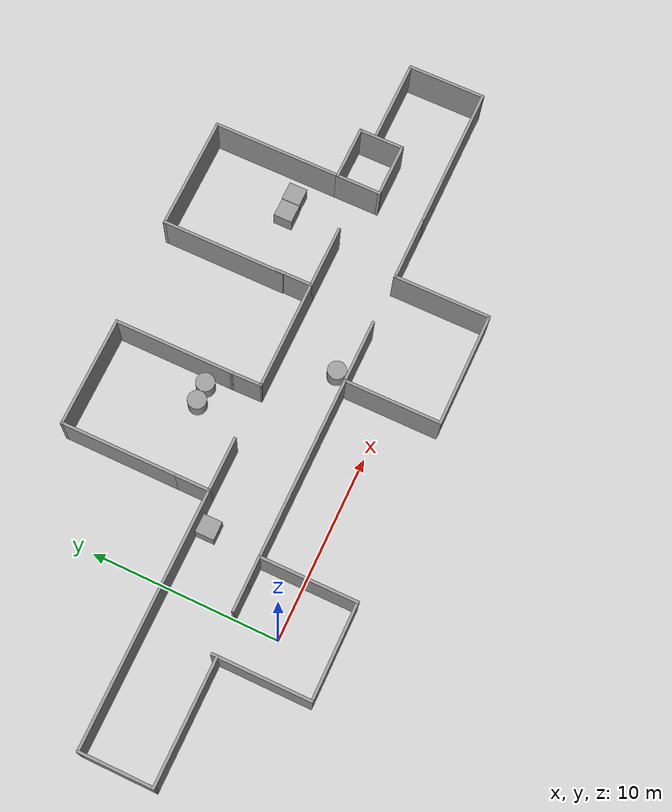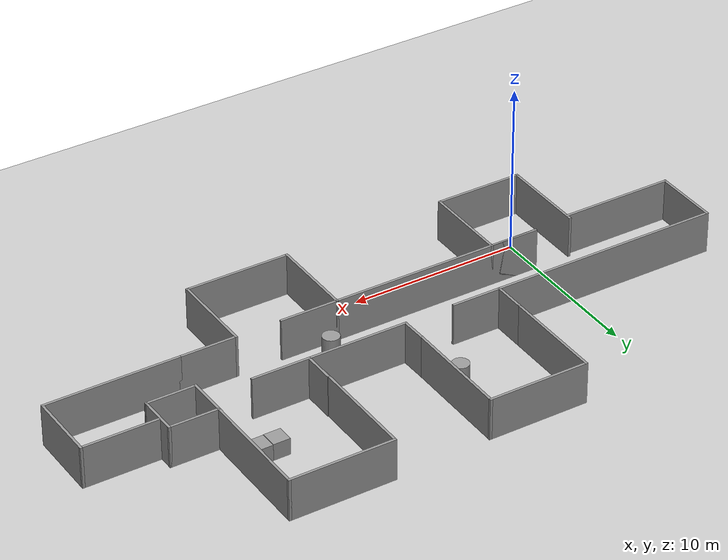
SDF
<sdf version="1.7">
 <world name="default">
  <light name="sun" type="directional">
   <pose>0 0 10 0 -0 0</pose>
   <diffuse>0.8 0.8 0.8 1</diffuse>
   <specular>0.2 0.2 0.2 1</specular>
   <attenuation>
    <range>1000</range>
    <constant>0.9</constant>
    <linear>0.01</linear>
    <quadratic>0.001</quadratic>
   </attenuation>
   <direction>-0.5 0.1 -0.9</direction>
   <spot><inner_angle>0</inner_angle><outer_angle>0</outer_angle><falloff>0</falloff></spot>
  </light>
  <model name="ground_plane">
   <static>1</static>
   <link name="link">
    <collision name="collision">
     <geometry><plane><normal>0 0 1</normal><size>100 100</size></plane></geometry>
     <surface><friction><ode><mu>100</mu><mu2>50</mu2></ode></friction></surface>
    </collision>
    <visual name="visual">
     <cast_shadows>0</cast_shadows>
     <geometry><plane><normal>0 0 1</normal><size>100 100</size></plane></geometry>
     <material>
      <script><uri>file://media/materials/scripts/gazebo.material</uri><name>Gazebo/Grey</name></script>
     </material>
    </visual>
   </link>
  </model>
  <gravity>0 0 -9.8</gravity>
  <magnetic_field>6e-06 2.3e-05 -4.2e-05</magnetic_field>
  <atmosphere type="adiabatic"/>
  <physics type="ode">
   <max_step_size>0.001</max_step_size>
   <real_time_factor>1</real_time_factor>
   <real_time_update_rate>1000</real_time_update_rate>
  </physics>
  <scene><ambient>0.4 0.4 0.4 1</ambient><background>0.7 0.7 0.7 1</background><shadows>1</shadows></scene>
  <spherical_coordinates>
   <surface_model>EARTH_WGS84</surface_model>
   <latitude_deg>0</latitude_deg>
   <longitude_deg>0</longitude_deg>
   <elevation>0</elevation>
   <heading_deg>0</heading_deg>
  </spherical_coordinates>
  <model name="clutter_env02">
   <pose>10.5567 5.6954 0 0 -0 0</pose>
   <link name="Wall_0">
    <collision name="Wall_0_Collision">
     <geometry><box><size>5.25 0.15 2.5</size></box></geometry>
     <pose>0 0 1.25 0 -0 0</pose>
    </collision>
    <visual name="Wall_0_Visual">
     <pose>0 0 1.25 0 -0 0</pose>
     <geometry><box><size>5.25 0.15 2.5</size></box></geometry>
     <material>
      <script><uri>file://media/materials/scripts/gazebo.material</uri><name>Gazebo/Grey</name></script>
      <ambient>1 1 1 1</ambient>
     </material>
     <meta><layer>0</layer></meta>
    </visual>
    <pose>-12.775 -5.9 0 0 -0 -1.5708</pose>
   </link>
   <link name="Wall_1">
    <collision name="Wall_1_Collision">
     <geometry><box><size>5.25 0.15 2.5</size></box></geometry>
     <pose>0 0 1.25 0 -0 0</pose>
    </collision>
    <visual name="Wall_1_Visual">
     <pose>0 0 1.25 0 -0 0</pose>
     <geometry><box><size>5.25 0.15 2.5</size></box></geometry>
     <material>
      <script><uri>file://media/materials/scripts/gazebo.material</uri><name>Gazebo/Grey</name></script>
      <ambient>1 1 1 1</ambient>
     </material>
     <meta><layer>0</layer></meta>
    </visual>
    <pose>-10.225 -8.45 0 0 -0 0</pose>
   </link>
   <link name="Wall_11">
    <collision name="Wall_11_Collision">
     <geometry><box><size>2.5 0.15 2.5</size></box></geometry>
     <pose>0 0 1.25 0 -0 0</pose>
    </collision>
    <visual name="Wall_11_Visual">
     <pose>0 0 1.25 0 -0 0</pose>
     <geometry><box><size>2.5 0.15 2.5</size></box></geometry>
     <material>
      <script><uri>file://media/materials/scripts/gazebo.material</uri><name>Gazebo/Grey</name></script>
      <ambient>1 1 1 1</ambient>
     </material>
     <meta><layer>0</layer></meta>
    </visual>
    <pose>14.875 0.425 0 0 -0 1.5708</pose>
   </link>
   <link name="Wall_12">
    <collision name="Wall_12_Collision">
     <geometry><box><size>3 0.15 2.5</size></box></geometry>
     <pose>0 0 1.25 0 -0 0</pose>
    </collision>
    <visual name="Wall_12_Visual">
     <pose>0 0 1.25 0 -0 0</pose>
     <geometry><box><size>3 0.15 2.5</size></box></geometry>
     <material>
      <script><uri>file://media/materials/scripts/gazebo.material</uri><name>Gazebo/Grey</name></script>
      <ambient>1 1 1 1</ambient>
     </material>
     <meta><layer>0</layer></meta>
    </visual>
    <pose>13.45 1.6 0 0 -0 3.14159</pose>
   </link>
   <link name="Wall_13">
    <collision name="Wall_13_Collision">
     <geometry><box><size>7 0.15 2.5</size></box></geometry>
     <pose>0 0 1.25 0 -0 0</pose>
    </collision>
    <visual name="Wall_13_Visual">
     <pose>0 0 1.25 0 -0 0</pose>
     <geometry><box><size>7 0.15 2.5</size></box></geometry>
     <material>
      <script><uri>file://media/materials/scripts/gazebo.material</uri><name>Gazebo/Grey</name></script>
      <ambient>1 1 1 1</ambient>
     </material>
     <meta><layer>0</layer></meta>
    </visual>
    <pose>12.025 5.025 0 0 -0 1.5708</pose>
   </link>
   <link name="Wall_14">
    <collision name="Wall_14_Collision">
     <geometry><box><size>6.25 0.15 2.5</size></box></geometry>
     <pose>0 0 1.25 0 -0 0</pose>
    </collision>
    <visual name="Wall_14_Visual">
     <pose>0 0 1.25 0 -0 0</pose>
     <geometry><box><size>6.25 0.15 2.5</size></box></geometry>
     <material>
      <script><uri>file://media/materials/scripts/gazebo.material</uri><name>Gazebo/Grey</name></script>
      <ambient>1 1 1 1</ambient>
     </material>
     <meta><layer>0</layer></meta>
    </visual>
    <pose>8.975 8.45 0 0 -0 3.14159</pose>
   </link>
   <link name="Wall_15">
    <collision name="Wall_15_Collision">
     <geometry><box><size>6.75 0.15 2.5</size></box></geometry>
     <pose>0 0 1.25 0 -0 0</pose>
    </collision>
    <visual name="Wall_15_Visual">
     <pose>0 0 1.25 0 -0 0</pose>
     <geometry><box><size>6.75 0.15 2.5</size></box></geometry>
     <material>
      <script><uri>file://media/materials/scripts/gazebo.material</uri><name>Gazebo/Grey</name></script>
      <ambient>1 1 1 1</ambient>
     </material>
     <meta><layer>0</layer></meta>
    </visual>
    <pose>5.925 5.15 0 0 -0 -1.5708</pose>
   </link>
   <link name="Wall_17">
    <collision name="Wall_17_Collision">
     <geometry><box><size>6.5 0.15 2.5</size></box></geometry>
     <pose>0 0 1.25 0 -0 0</pose>
    </collision>
    <visual name="Wall_17_Visual">
     <pose>0 0 1.25 0 -0 0</pose>
     <geometry><box><size>6.5 0.15 2.5</size></box></geometry>
     <material>
      <script><uri>file://media/materials/scripts/gazebo.material</uri><name>Gazebo/Grey</name></script>
      <ambient>1 1 1 1</ambient>
     </material>
     <meta><layer>0</layer></meta>
    </visual>
    <pose>0.074999 5.025 0 0 -0 1.5708</pose>
   </link>
   <link name="Wall_18">
    <collision name="Wall_18_Collision">
     <geometry><box><size>6 0.15 2.5</size></box></geometry>
     <pose>0 0 1.25 0 -0 0</pose>
    </collision>
    <visual name="Wall_18_Visual">
     <pose>0 0 1.25 0 -0 0</pose>
     <geometry><box><size>6 0.15 2.5</size></box></geometry>
     <material>
      <script><uri>file://media/materials/scripts/gazebo.material</uri><name>Gazebo/Grey</name></script>
      <ambient>1 1 1 1</ambient>
     </material>
     <meta><layer>0</layer></meta>
    </visual>
    <pose>-2.85 8.2 0 0 -0 3.14159</pose>
   </link>
   <link name="Wall_19">
    <collision name="Wall_19_Collision">
     <geometry><box><size>6.25 0.15 2.5</size></box></geometry>
     <pose>0 0 1.25 0 -0 0</pose>
    </collision>
    <visual name="Wall_19_Visual">
     <pose>0 0 1.25 0 -0 0</pose>
     <geometry><box><size>6.25 0.15 2.5</size></box></geometry>
     <material>
      <script><uri>file://media/materials/scripts/gazebo.material</uri><name>Gazebo/Grey</name></script>
      <ambient>1 1 1 1</ambient>
     </material>
     <meta><layer>0</layer></meta>
    </visual>
    <pose>-5.775 5.15 0 0 -0 -1.5708</pose>
   </link>
   <link name="Wall_2">
    <collision name="Wall_2_Collision">
     <geometry><box><size>5.25 0.15 2.5</size></box></geometry>
     <pose>0 0 1.25 0 -0 0</pose>
    </collision>
    <visual name="Wall_2_Visual">
     <pose>0 0 1.25 0 -0 0</pose>
     <geometry><box><size>5.25 0.15 2.5</size></box></geometry>
     <material>
      <script><uri>file://media/materials/scripts/gazebo.material</uri><name>Gazebo/Grey</name></script>
      <ambient>1 1 1 1</ambient>
     </material>
     <meta><layer>0</layer></meta>
    </visual>
    <pose>-7.675 -5.9 0 0 -0 1.5708</pose>
   </link>
   <link name="Wall_20">
    <collision name="Wall_20_Collision">
     <geometry><box><size>2 0.15 2.5</size></box></geometry>
     <pose>0 0 1.25 0 -0 0</pose>
    </collision>
    <visual name="Wall_20_Visual">
     <pose>0 0 1.25 0 -0 0</pose>
     <geometry><box><size>2 0.15 2.5</size></box></geometry>
     <material>
      <script><uri>file://media/materials/scripts/gazebo.material</uri><name>Gazebo/Grey</name></script>
      <ambient>1 1 1 1</ambient>
     </material>
     <meta><layer>0</layer></meta>
    </visual>
    <pose>-5.775 1.175 0 0 -0 -1.5708</pose>
   </link>
   <link name="Wall_21">
    <collision name="Wall_21_Collision">
     <geometry><box><size>13.75 0.15 2.5</size></box></geometry>
     <pose>0 0 1.25 0 -0 0</pose>
    </collision>
    <visual name="Wall_21_Visual">
     <pose>0 0 1.25 0 -0 0</pose>
     <geometry><box><size>13.75 0.15 2.5</size></box></geometry>
     <material>
      <script><uri>file://media/materials/scripts/gazebo.material</uri><name>Gazebo/Grey</name></script>
      <ambient>1 1 1 1</ambient>
     </material>
     <meta><layer>0</layer></meta>
    </visual>
    <pose>-12.575 0.25 0 0 -0 3.14159</pose>
   </link>
   <link name="Wall_22">
    <collision name="Wall_22_Collision">
     <geometry><box><size>4 0.15 2.5</size></box></geometry>
     <pose>0 0 1.25 0 -0 0</pose>
    </collision>
    <visual name="Wall_22_Visual">
     <pose>0 0 1.25 0 -0 0</pose>
     <geometry><box><size>4 0.15 2.5</size></box></geometry>
     <material>
      <script><uri>file://media/materials/scripts/gazebo.material</uri><name>Gazebo/Grey</name></script>
      <ambient>1 1 1 1</ambient>
     </material>
     <meta><layer>0</layer></meta>
    </visual>
    <pose>-19.375 -1.675 0 0 -0 -1.5708</pose>
   </link>
   <link name="Wall_23">
    <collision name="Wall_23_Collision">
     <geometry><box><size>6.75 0.15 2.5</size></box></geometry>
     <pose>0 0 1.25 0 -0 0</pose>
    </collision>
    <visual name="Wall_23_Visual">
     <pose>0 0 1.25 0 -0 0</pose>
     <geometry><box><size>6.75 0.15 2.5</size></box></geometry>
     <material>
      <script><uri>file://media/materials/scripts/gazebo.material</uri><name>Gazebo/Grey</name></script>
      <ambient>1 1 1 1</ambient>
     </material>
     <meta><layer>0</layer></meta>
    </visual>
    <pose>-16.075 -3.6 0 0 -0 0</pose>
   </link>
   <link name="Wall_25">
    <collision name="Wall_25_Collision">
     <geometry><box><size>3 0.15 2.5</size></box></geometry>
     <pose>0 0 1.25 0 -0 0</pose>
    </collision>
    <visual name="Wall_25_Visual">
     <pose>0 0 1.25 0 -0 0</pose>
     <geometry><box><size>3 0.15 2.5</size></box></geometry>
     <material>
      <script><uri>file://media/materials/scripts/gazebo.material</uri><name>Gazebo/Grey</name></script>
      <ambient>1 1 1 1</ambient>
     </material>
     <meta><layer>0</layer></meta>
    </visual>
    <pose>-4.35 0.25 0 0 -0 0</pose>
   </link>
   <link name="Wall_27">
    <collision name="Wall_27_Collision">
     <geometry><box><size>6 0.15 2.5</size></box></geometry>
     <pose>0 0 1.25 0 -0 0</pose>
    </collision>
    <visual name="Wall_27_Visual">
     <pose>0 0 1.25 0 -0 0</pose>
     <geometry><box><size>6 0.15 2.5</size></box></geometry>
     <material>
      <script><uri>file://media/materials/scripts/gazebo.material</uri><name>Gazebo/Grey</name></script>
      <ambient>1 1 1 1</ambient>
     </material>
     <meta><layer>0</layer></meta>
    </visual>
    <pose>3.03081 0.283447 0 0 -0 0</pose>
   </link>
   <link name="Wall_28">
    <collision name="Wall_28_Collision">
     <geometry><box><size>2 0.15 2.5</size></box></geometry>
     <pose>0 0 1.25 0 -0 0</pose>
    </collision>
    <visual name="Wall_28_Visual">
     <pose>0 0 1.25 0 -0 0</pose>
     <geometry><box><size>2 0.15 2.5</size></box></geometry>
     <material>
      <script><uri>file://media/materials/scripts/gazebo.material</uri><name>Gazebo/Grey</name></script>
      <ambient>1 1 1 1</ambient>
     </material>
     <meta><layer>0</layer></meta>
    </visual>
    <pose>5.95581 1.20845 0 0 -0 1.5708</pose>
   </link>
   <link name="Wall_3">
    <collision name="Wall_3_Collision">
     <geometry><box><size>3 0.15 2.5</size></box></geometry>
     <pose>0 0 1.25 0 -0 0</pose>
    </collision>
    <visual name="Wall_3_Visual">
     <pose>0 0 1.25 0 -0 0</pose>
     <geometry><box><size>3 0.15 2.5</size></box></geometry>
     <material>
      <script><uri>file://media/materials/scripts/gazebo.material</uri><name>Gazebo/Grey</name></script>
      <ambient>1 1 1 1</ambient>
     </material>
     <meta><layer>0</layer></meta>
    </visual>
    <pose>-9.1 -3.35 0 0 -0 3.14159</pose>
   </link>
   <link name="Wall_30">
    <collision name="Wall_30_Collision">
     <geometry><box><size>3.5 0.15 2.5</size></box></geometry>
     <pose>0 0 1.25 0 -0 0</pose>
    </collision>
    <visual name="Wall_30_Visual">
     <pose>0 0 1.25 0 -0 0</pose>
     <geometry><box><size>3.5 0.15 2.5</size></box></geometry>
     <material>
      <script><uri>file://media/materials/scripts/gazebo.material</uri><name>Gazebo/Grey</name></script>
      <ambient>1 1 1 1</ambient>
     </material>
     <meta><layer>0</layer></meta>
    </visual>
    <pose>7.63081 0.283447 0 0 -0 0</pose>
   </link>
   <link name="Wall_32">
    <collision name="Wall_32_Collision">
     <geometry><box><size>1.71686 0.15 2.5</size></box></geometry>
     <pose>0 0 1.25 0 -0 0</pose>
    </collision>
    <visual name="Wall_32_Visual">
     <pose>0 0 1.25 0 -0 0</pose>
     <geometry><box><size>1.71686 0.15 2.5</size></box></geometry>
     <material>
      <script><uri>file://media/materials/scripts/gazebo.material</uri><name>Gazebo/Grey</name></script>
      <ambient>1 1 1 1</ambient>
     </material>
     <meta><layer>0</layer></meta>
    </visual>
    <pose>0.090406 1.06672 0 0 -0 -1.55113</pose>
   </link>
   <link name="Wall_34">
    <collision name="Wall_34_Collision">
     <geometry><box><size>3.5 0.15 2.5</size></box></geometry>
     <pose>0 0 1.25 0 -0 0</pose>
    </collision>
    <visual name="Wall_34_Visual">
     <pose>0 0 1.25 0 -0 0</pose>
     <geometry><box><size>3.5 0.15 2.5</size></box></geometry>
     <material>
      <script><uri>file://media/materials/scripts/gazebo.material</uri><name>Gazebo/Grey</name></script>
      <ambient>1 1 1 1</ambient>
     </material>
     <meta><layer>0</layer></meta>
    </visual>
    <pose>3.75 -3.35 0 0 -0 0</pose>
   </link>
   <link name="Wall_36">
    <collision name="Wall_36_Collision">
     <geometry><box><size>8 0.15 2.5</size></box></geometry>
     <pose>0 0 1.25 0 -0 0</pose>
    </collision>
    <visual name="Wall_36_Visual">
     <pose>0 0 1.25 0 -0 0</pose>
     <geometry><box><size>8 0.15 2.5</size></box></geometry>
     <material>
      <script><uri>file://media/materials/scripts/gazebo.material</uri><name>Gazebo/Grey</name></script>
      <ambient>1 1 1 1</ambient>
     </material>
     <meta><layer>0</layer></meta>
    </visual>
    <pose>15.45 -3.35 0 0 -0 0</pose>
   </link>
   <link name="Wall_37">
    <collision name="Wall_37_Collision">
     <geometry><box><size>4.25 0.15 2.5</size></box></geometry>
     <pose>0 0 1.25 0 -0 0</pose>
    </collision>
    <visual name="Wall_37_Visual">
     <pose>0 0 1.25 0 -0 0</pose>
     <geometry><box><size>4.25 0.15 2.5</size></box></geometry>
     <material>
      <script><uri>file://media/materials/scripts/gazebo.material</uri><name>Gazebo/Grey</name></script>
      <ambient>1 1 1 1</ambient>
     </material>
     <meta><layer>0</layer></meta>
    </visual>
    <pose>19.375 -1.3 0 0 -0 1.5708</pose>
   </link>
   <link name="Wall_38">
    <collision name="Wall_38_Collision">
     <geometry><box><size>4.5 0.15 2.5</size></box></geometry>
     <pose>0 0 1.25 0 -0 0</pose>
    </collision>
    <visual name="Wall_38_Visual">
     <pose>0 0 1.25 0 -0 0</pose>
     <geometry><box><size>4.5 0.15 2.5</size></box></geometry>
     <material>
      <script><uri>file://media/materials/scripts/gazebo.material</uri><name>Gazebo/Grey</name></script>
      <ambient>1 1 1 1</ambient>
     </material>
     <meta><layer>0</layer></meta>
    </visual>
    <pose>17.2 0.75 0 0 -0 3.14159</pose>
   </link>
   <link name="Wall_4">
    <collision name="Wall_4_Collision">
     <geometry><box><size>12.75 0.15 2.5</size></box></geometry>
     <pose>0 0 1.25 0 -0 0</pose>
    </collision>
    <visual name="Wall_4_Visual">
     <pose>0 0 1.25 0 -0 0</pose>
     <geometry><box><size>12.75 0.15 2.5</size></box></geometry>
     <material>
      <script><uri>file://media/materials/scripts/gazebo.material</uri><name>Gazebo/Grey</name></script>
      <ambient>1 1 1 1</ambient>
     </material>
     <meta><layer>0</layer></meta>
    </visual>
    <pose>-4.225 -3.35 0 0 -0 0</pose>
   </link>
   <link name="Wall_40">
    <collision name="Wall_40_Collision">
     <geometry><box><size>3 0.15 2.5</size></box></geometry>
     <pose>0 0 1.25 0 -0 0</pose>
    </collision>
    <visual name="Wall_40_Visual">
     <pose>0 0 1.25 0 -0 0</pose>
     <geometry><box><size>3 0.15 2.5</size></box></geometry>
     <material>
      <script><uri>file://media/materials/scripts/gazebo.material</uri><name>Gazebo/Grey</name></script>
      <ambient>1 1 1 1</ambient>
     </material>
     <meta><layer>0</layer></meta>
    </visual>
    <pose>13.45 -0.75 0 0 -0 3.14159</pose>
   </link>
   <link name="Wall_41">
    <collision name="Wall_41_Collision">
     <geometry><box><size>2.5 0.15 2.5</size></box></geometry>
     <pose>0 0 1.25 0 -0 0</pose>
    </collision>
    <visual name="Wall_41_Visual">
     <pose>0 0 1.25 0 -0 0</pose>
     <geometry><box><size>2.5 0.15 2.5</size></box></geometry>
     <material>
      <script><uri>file://media/materials/scripts/gazebo.material</uri><name>Gazebo/Grey</name></script>
      <ambient>1 1 1 1</ambient>
     </material>
     <meta><layer>0</layer></meta>
    </visual>
    <pose>12.025 0.425 0 0 -0 1.5708</pose>
   </link>
   <link name="Wall_5">
    <collision name="Wall_5_Collision">
     <geometry><box><size>5.25 0.15 2.5</size></box></geometry>
     <pose>0 0 1.25 0 -0 0</pose>
    </collision>
    <visual name="Wall_5_Visual">
     <pose>0 0 1.25 0 -0 0</pose>
     <geometry><box><size>5.25 0.15 2.5</size></box></geometry>
     <material>
      <script><uri>file://media/materials/scripts/gazebo.material</uri><name>Gazebo/Grey</name></script>
      <ambient>1 1 1 1</ambient>
     </material>
     <meta><layer>0</layer></meta>
    </visual>
    <pose>2.075 -5.9 0 0 -0 -1.5708</pose>
   </link>
   <link name="Wall_6">
    <collision name="Wall_6_Collision">
     <geometry><box><size>6.25 0.15 2.5</size></box></geometry>
     <pose>0 0 1.25 0 -0 0</pose>
    </collision>
    <visual name="Wall_6_Visual">
     <pose>0 0 1.25 0 -0 0</pose>
     <geometry><box><size>6.25 0.15 2.5</size></box></geometry>
     <material>
      <script><uri>file://media/materials/scripts/gazebo.material</uri><name>Gazebo/Grey</name></script>
      <ambient>1 1 1 1</ambient>
     </material>
     <meta><layer>0</layer></meta>
    </visual>
    <pose>5.125 -8.45 0 0 -0 0</pose>
   </link>
   <link name="Wall_7">
    <collision name="Wall_7_Collision">
     <geometry><box><size>5.25 0.15 2.5</size></box></geometry>
     <pose>0 0 1.25 0 -0 0</pose>
    </collision>
    <visual name="Wall_7_Visual">
     <pose>0 0 1.25 0 -0 0</pose>
     <geometry><box><size>5.25 0.15 2.5</size></box></geometry>
     <material>
      <script><uri>file://media/materials/scripts/gazebo.material</uri><name>Gazebo/Grey</name></script>
      <ambient>1 1 1 1</ambient>
     </material>
     <meta><layer>0</layer></meta>
    </visual>
    <pose>8.175 -5.9 0 0 -0 1.5708</pose>
   </link>
   <link name="Wall_8">
    <collision name="Wall_8_Collision">
     <geometry><box><size>3.5 0.15 2.5</size></box></geometry>
     <pose>0 0 1.25 0 -0 0</pose>
    </collision>
    <visual name="Wall_8_Visual">
     <pose>0 0 1.25 0 -0 0</pose>
     <geometry><box><size>3.5 0.15 2.5</size></box></geometry>
     <material>
      <script><uri>file://media/materials/scripts/gazebo.material</uri><name>Gazebo/Grey</name></script>
      <ambient>1 1 1 1</ambient>
     </material>
     <meta><layer>0</layer></meta>
    </visual>
    <pose>9.85 -3.35 0 0 -0 0</pose>
   </link>
   <static>1</static>
  </model>
  <model name="unit_cylinder">
   <pose>9.05514 8.76084 0.498373 0 -0 0.002292</pose>
   <link name="link">
    <inertial>
     <mass>1</mass>
     <inertia><ixx>0.145833</ixx><ixy>0</ixy><ixz>0</ixz><iyy>0.145833</iyy><iyz>0</iyz><izz>0.125</izz></inertia>
    </inertial>
    <collision name="collision">
     <geometry><cylinder><radius>0.5</radius><length>1</length></cylinder></geometry>
    </collision>
    <visual name="visual">
     <geometry><cylinder><radius>0.5</radius><length>1</length></cylinder></geometry>
     <material>
      <script><name>Gazebo/Grey</name><uri>file://media/materials/scripts/gazebo.material</uri></script>
     </material>
    </visual>
   </link>
  </model>
  <model name="unit_cylinder_0">
   <pose>10.0546 8.79345 0.499992 -3e-06 -4e-06 0.001132</pose>
   <link name="link">
    <inertial>
     <mass>1</mass>
     <inertia><ixx>0.145833</ixx><ixy>0</ixy><ixz>0</ixz><iyy>0.145833</iyy><iyz>0</iyz><izz>0.125</izz></inertia>
    </inertial>
    <collision name="collision">
     <geometry><cylinder><radius>0.5</radius><length>1</length></cylinder></geometry>
    </collision>
    <visual name="visual">
     <geometry><cylinder><radius>0.5</radius><length>1</length></cylinder></geometry>
     <material>
      <script><name>Gazebo/Grey</name><uri>file://media/materials/scripts/gazebo.material</uri></script>
     </material>
    </visual>
   </link>
  </model>
  <model name="unit_box">
   <pose>21.3334 9.13228 0.499995 -1e-05 -0 -0</pose>
   <link name="link">
    <inertial>
     <mass>1</mass>
     <inertia>
      <ixx>0.166667</ixx>
      <ixy>0</ixy>
      <ixz>0</ixz>
      <iyy>0.166667</iyy>
      <iyz>0</iyz>
      <izz>0.166667</izz>
     </inertia>
    </inertial>
    <collision name="collision"><geometry><box><size>1 1 1</size></box></geometry></collision>
    <visual name="visual">
     <geometry><box><size>1 1 1</size></box></geometry>
     <material>
      <script><name>Gazebo/Grey</name><uri>file://media/materials/scripts/gazebo.material</uri></script>
     </material>
    </visual>
   </link>
  </model>
  <model name="unit_box_0">
   <pose>20.3169 9.10359 0.499995 0 1e-05 0</pose>
   <link name="link">
    <inertial>
     <mass>1</mass>
     <inertia>
      <ixx>0.166667</ixx>
      <ixy>0</ixy>
      <ixz>0</ixz>
      <iyy>0.166667</iyy>
      <iyz>0</iyz>
      <izz>0.166667</izz>
     </inertia>
    </inertial>
    <collision name="collision"><geometry><box><size>1 1 1</size></box></geometry></collision>
    <visual name="visual">
     <geometry><box><size>1 1 1</size></box></geometry>
     <material>
      <script><name>Gazebo/Grey</name><uri>file://media/materials/scripts/gazebo.material</uri></script>
     </material>
    </visual>
   </link>
  </model>
  <model name="unit_cylinder_1">
   <pose>13.4529 3.08819 0.499993 -3e-06 -4e-06 -0</pose>
   <link name="link">
    <inertial>
     <mass>1</mass>
     <inertia><ixx>0.145833</ixx><ixy>0</ixy><ixz>0</ixz><iyy>0.145833</iyy><iyz>0</iyz><izz>0.125</izz></inertia>
    </inertial>
    <collision name="collision">
     <geometry><cylinder><radius>0.5</radius><length>1</length></cylinder></geometry>
    </collision>
    <visual name="visual">
     <geometry><cylinder><radius>0.5</radius><length>1</length></cylinder></geometry>
     <material>
      <script><name>Gazebo/Grey</name><uri>file://media/materials/scripts/gazebo.material</uri></script>
     </material>
    </visual>
   </link>
  </model>
  <model name="unit_box_1">
   <pose>3.45083 5.37038 0.5 0 -0 -1e-06</pose>
   <link name="link">
    <inertial>
     <mass>1</mass>
     <inertia>
      <ixx>0.166667</ixx>
      <ixy>0</ixy>
      <ixz>0</ixz>
      <iyy>0.166667</iyy>
      <iyz>0</iyz>
      <izz>0.166667</izz>
     </inertia>
    </inertial>
    <collision name="collision"><geometry><box><size>1 1 1</size></box></geometry></collision>
    <visual name="visual">
     <geometry><box><size>1 1 1</size></box></geometry>
     <material>
      <script><name>Gazebo/Grey</name><uri>file://media/materials/scripts/gazebo.material</uri></script>
     </material>
    </visual>
   </link>
  </model>
 </world>
</sdf>
